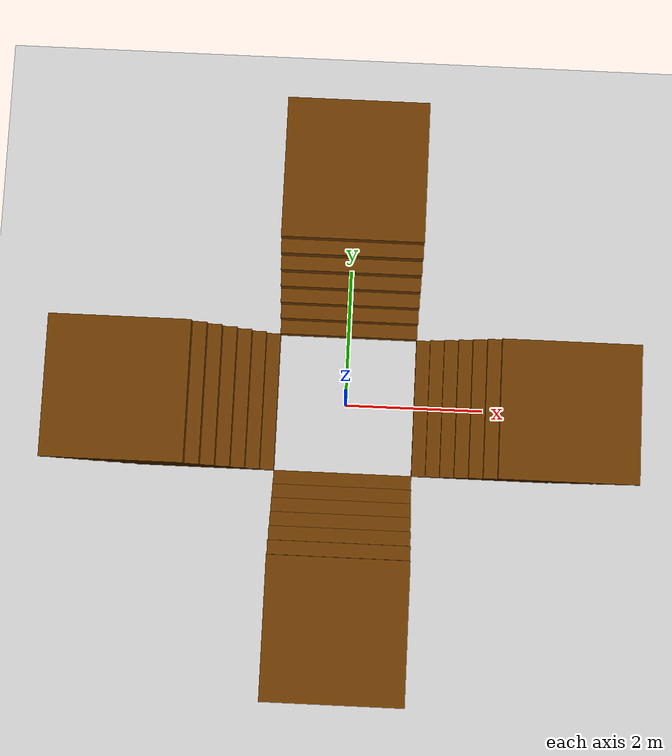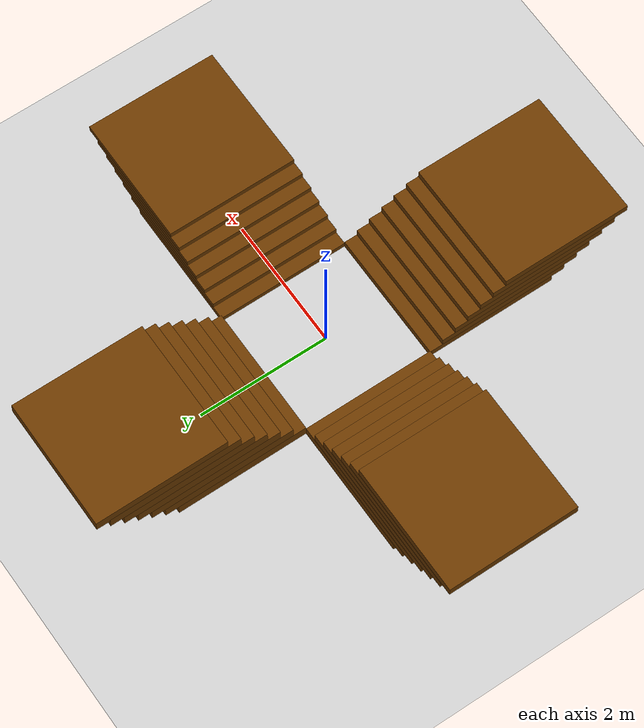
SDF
<?xml version="1.0" ?>
<sdf version="1.5">
    <world name="default">

        <physics type="ode">
        <max_step_size>0.00025</max_step_size>
        <real_time_factor>1.0</real_time_factor>
        <real_time_update_rate>1000</real_time_update_rate>
        <gravity>0 0 -9.81</gravity>
            <ode>
                <solver>
                <type>quick</type>
                <iters>80</iters>
                <sor>1.3</sor>
                </solver>
                <constraints>
                <cfm>0.0</cfm>
                <erp>0.2</erp>
                <contact_max_correcting_vel>0.1</contact_max_correcting_vel>
                <contact_surface_layer>0.0001</contact_surface_layer>
                </constraints>
            </ode>
        </physics>

        <scene>
        <sky>
            <clouds>
                <speed>12</speed>
            </clouds>
        </sky>
        </scene>
        <!-- A global light source -->
        <include>
            <uri>model://sun</uri>
        </include>
        <!-- A ground plane -->
        <include>
            <uri>model://ground_plane</uri>
        </include>
        <!-- environment blocks, obstacles or stairs -->
        <model name="static_environment">
        <static>true</static>

            <!-- stairs 1 -->
            <link name="floor">
                <pose>2 0 0.045 0 0 0</pose>
                <collision name="floor_collision">
                    <geometry>
                        <box>
                            <size>2 2 0.09</size>
                        </box>
                    </geometry>
                </collision>
                <visual name="floor_visual">
                    <geometry>
                        <box>
                            <size>2 2 0.09</size>
                        </box>
                    </geometry>
                    <material>
                        <ambient>0.2 0.2 0.2 1.0</ambient>
                        <diffuse>.421 0.225 0.0 1.0</diffuse>
                    </material>
                </visual>
            </link>

            <link name="floor1">
                <pose>2.2 0 0.135 0 0 0</pose>
                <collision name="floor1_collision">
                    <geometry>
                        <box>
                            <size>2 2 0.09</size>
                        </box>
                    </geometry>
                </collision>
                <visual name="floor1_visual">
                    <geometry>
                        <box>
                            <size>2 2 0.09</size>
                        </box>
                    </geometry>
                    <material>
                        <ambient>0.2 0.2 0.2 1.0</ambient>
                        <diffuse>.421 0.225 0.0 1.0</diffuse>
                    </material>
                </visual>
            </link>

            <link name="floor2">
                <pose>2.4 0 0.225 0 0 0</pose>
                <collision name="floor2_collision">
                    <geometry>
                        <box>
                            <size>2 2 0.09</size>
                        </box>
                    </geometry>
                </collision>
                <visual name="floor2_visual">
                    <geometry>
                        <box>
                            <size>2 2 0.09</size>
                        </box>
                    </geometry>
                    <material>
                        <ambient>0.2 0.2 0.2 1.0</ambient>
                        <diffuse>.421 0.225 0.0 1.0</diffuse>
                    </material>
                </visual>
            </link>

            <link name="floor3">
                <pose>2.6 0 0.315 0 0 0</pose>
                <collision name="floor3_collision">
                    <geometry>
                        <box>
                            <size>2 2 0.09</size>
                        </box>
                    </geometry>
                </collision>
                <visual name="floor3_visual">
                    <geometry>
                        <box>
                            <size>2 2 0.09</size>
                        </box>
                    </geometry>
                    <material>
                        <ambient>0.2 0.2 0.2 1.0</ambient>
                        <diffuse>.421 0.225 0.0 1.0</diffuse>
                    </material>
                </visual>
            </link>

            <link name="floor4">
                <pose>2.8 0 0.405 0 0 0</pose>
                <collision name="floor4_collision">
                    <geometry>
                        <box>
                            <size>2 2 0.09</size>
                        </box>
                    </geometry>
                </collision>
                <visual name="floor4_visual">
                    <geometry>
                        <box>
                            <size>2 2 0.09</size>
                        </box>
                    </geometry>
                    <material>
                        <ambient>0.2 0.2 0.2 1.0</ambient>
                        <diffuse>.421 0.225 0.0 1.0</diffuse>
                    </material>
                </visual>
            </link>

            <link name="floor5">
                <pose>3.0 0 0.495 0 0 0</pose>
                <collision name="floor5_collision">
                    <geometry>
                        <box>
                            <size>2 2 0.09</size>
                        </box>
                    </geometry>
                </collision>
                <visual name="floor5_visual">
                    <geometry>
                        <box>
                            <size>2 2 0.09</size>
                        </box>
                    </geometry>
                    <material>
                        <ambient>0.2 0.2 0.2 1.0</ambient>
                        <diffuse>.421 0.225 0.0 1.0</diffuse>
                    </material>
                </visual>
            </link>

            <link name="floor6">
                <pose>3.2 0 0.585 0 0 0</pose>
                <collision name="floor6_collision">
                    <geometry>
                        <box>
                            <size>2 2 0.09</size>
                        </box>
                    </geometry>
                </collision>
                <visual name="floor6_visual">
                    <geometry>
                        <box>
                            <size>2 2 0.09</size>
                        </box>
                    </geometry>
                    <material>
                        <ambient>0.2 0.2 0.2 1.0</ambient>
                        <diffuse>.421 0.225 0.0 1.0</diffuse>
                    </material>
                </visual>
            </link>

            <!-- stairs 2 -->
            <link name="floor7">
                <pose>0 -2 0.06 0 0 0</pose>
                <collision name="floor7_collision">
                    <geometry>
                        <box>
                            <size>2 2 0.12</size>
                        </box>
                    </geometry>
                </collision>
                <visual name="floor7_visual">
                    <geometry>
                        <box>
                            <size>2 2 0.12</size>
                        </box>
                    </geometry>
                    <material>
                        <ambient>0.2 0.2 0.2 1.0</ambient>
                        <diffuse>.421 0.225 0.0 1.0</diffuse>
                    </material>
                </visual>
            </link>

            <link name="floor8">
                <pose>0 -2.2 0.18 0 0 0</pose>
                <collision name="floor8_collision">
                    <geometry>
                        <box>
                            <size>2 2 0.12</size>
                        </box>
                    </geometry>
                </collision>
                <visual name="floor8_visual">
                    <geometry>
                        <box>
                            <size>2 2 0.12</size>
                        </box>
                    </geometry>
                    <material>
                        <ambient>0.2 0.2 0.2 1.0</ambient>
                        <diffuse>.421 0.225 0.0 1.0</diffuse>
                    </material>
                </visual>
            </link>

            <link name="floor9">
                <pose>0 -2.4 0.3 0 0 0</pose>
                <collision name="floor9_collision">
                    <geometry>
                        <box>
                            <size>2 2 0.12</size>
                        </box>
                    </geometry>
                </collision>
                <visual name="floor9_visual">
                    <geometry>
                        <box>
                            <size>2 2 0.12</size>
                        </box>
                    </geometry>
                    <material>
                        <ambient>0.2 0.2 0.2 1.0</ambient>
                        <diffuse>.421 0.225 0.0 1.0</diffuse>
                    </material>
                </visual>
            </link>

            <link name="floor10">
                <pose>0 -2.6 0.42 0 0 0</pose>
                <collision name="floor10_collision">
                    <geometry>
                        <box>
                            <size>2 2 0.12</size>
                        </box>
                    </geometry>
                </collision>
                <visual name="floor10_visual">
                    <geometry>
                        <box>
                            <size>2 2 0.12</size>
                        </box>
                    </geometry>
                    <material>
                        <ambient>0.2 0.2 0.2 1.0</ambient>
                        <diffuse>.421 0.225 0.0 1.0</diffuse>
                    </material>
                </visual>
            </link>

            <link name="floor11">
                <pose>0 -2.8 0.54 0 0 0</pose>
                <collision name="floor11_collision">
                    <geometry>
                        <box>
                            <size>2 2 0.12</size>
                        </box>
                    </geometry>
                </collision>
                <visual name="floor11_visual">
                    <geometry>
                        <box>
                            <size>2 2 0.12</size>
                        </box>
                    </geometry>
                    <material>
                        <ambient>0.2 0.2 0.2 1.0</ambient>
                        <diffuse>.421 0.225 0.0 1.0</diffuse>
                    </material>
                </visual>
            </link>

            <link name="floor12">
                <pose>0 -3.0 0.66 0 0 0</pose>
                <collision name="floor12_collision">
                    <geometry>
                        <box>
                            <size>2 2 0.12</size>
                        </box>
                    </geometry>
                </collision>
                <visual name="floor12_visual">
                    <geometry>
                        <box>
                            <size>2 2 0.12</size>
                        </box>
                    </geometry>
                    <material>
                        <ambient>0.2 0.2 0.2 1.0</ambient>
                        <diffuse>.421 0.225 0.0 1.0</diffuse>
                    </material>
                </visual>
            </link>

            <link name="floor13">
                <pose>0 -3.2 0.78 0 0 0</pose>
                <collision name="floor13_collision">
                    <geometry>
                        <box>
                            <size>2 2 0.12</size>
                        </box>
                    </geometry>
                </collision>
                <visual name="floor13_visual">
                    <geometry>
                        <box>
                            <size>2 2 0.12</size>
                        </box>
                    </geometry>
                    <material>
                        <ambient>0.2 0.2 0.2 1.0</ambient>
                        <diffuse>.421 0.225 0.0 1.0</diffuse>
                    </material>
                </visual>
            </link>

            <!-- stairs 3 -->
            <link name="floor14">
                <pose>-2 0 0.075 0 0 0</pose>
                <collision name="floor14_collision">
                    <geometry>
                        <box>
                            <size>2 2 0.15</size>
                        </box>
                    </geometry>
                </collision>
                <visual name="floor14_visual">
                    <geometry>
                        <box>
                            <size>2 2 0.15</size>
                        </box>
                    </geometry>
                    <material>
                        <ambient>0.2 0.2 0.2 1.0</ambient>
                        <diffuse>.421 0.225 0.0 1.0</diffuse>
                    </material>
                </visual>
            </link>

            <link name="floor15">
                <pose>-2.2 0 0.225 0 0 0</pose>
                <collision name="floor15_collision">
                    <geometry>
                        <box>
                            <size>2 2 0.15</size>
                        </box>
                    </geometry>
                </collision>
                <visual name="floor15_visual">
                    <geometry>
                        <box>
                            <size>2 2 0.15</size>
                        </box>
                    </geometry>
                    <material>
                        <ambient>0.2 0.2 0.2 1.0</ambient>
                        <diffuse>.421 0.225 0.0 1.0</diffuse>
                    </material>
                </visual>
            </link>

            <link name="floor16">
                <pose>-2.4 0 0.375 0 0 0</pose>
                <collision name="floor16_collision">
                    <geometry>
                        <box>
                            <size>2 2 0.15</size>
                        </box>
                    </geometry>
                </collision>
                <visual name="floor16_visual">
                    <geometry>
                        <box>
                            <size>2 2 0.15</size>
                        </box>
                    </geometry>
                    <material>
                        <ambient>0.2 0.2 0.2 1.0</ambient>
                        <diffuse>.421 0.225 0.0 1.0</diffuse>
                    </material>
                </visual>
            </link>

            <link name="floor17">
                <pose>-2.6 0 0.525 0 0 0</pose>
                <collision name="floor17_collision">
                    <geometry>
                        <box>
                            <size>2 2 0.15</size>
                        </box>
                    </geometry>
                </collision>
                <visual name="floor17_visual">
                    <geometry>
                        <box>
                            <size>2 2 0.15</size>
                        </box>
                    </geometry>
                    <material>
                        <ambient>0.2 0.2 0.2 1.0</ambient>
                        <diffuse>.421 0.225 0.0 1.0</diffuse>
                    </material>
                </visual>
            </link>

            <link name="floor18">
                <pose>-2.8 0 0.675 0 0 0</pose>
                <collision name="floor18_collision">
                    <geometry>
                        <box>
                            <size>2 2 0.15</size>
                        </box>
                    </geometry>
                </collision>
                <visual name="floor18_visual">
                    <geometry>
                        <box>
                            <size>2 2 0.15</size>
                        </box>
                    </geometry>
                    <material>
                        <ambient>0.2 0.2 0.2 1.0</ambient>
                        <diffuse>.421 0.225 0.0 1.0</diffuse>
                    </material>
                </visual>
            </link>

            <link name="floor19">
                <pose>-3 0 0.825 0 0 0</pose>
                <collision name="floor19_collision">
                    <geometry>
                        <box>
                            <size>2 2 0.15</size>
                        </box>
                    </geometry>
                </collision>
                <visual name="floor19_visual">
                    <geometry>
                        <box>
                            <size>2 2 0.15</size>
                        </box>
                    </geometry>
                    <material>
                        <ambient>0.2 0.2 0.2 1.0</ambient>
                        <diffuse>.421 0.225 0.0 1.0</diffuse>
                    </material>
                </visual>
            </link>

            <link name="floor20">
                <pose>-3.2 0 0.975 0 0 0</pose>
                <collision name="floor20_collision">
                    <geometry>
                        <box>
                            <size>2 2 0.15</size>
                        </box>
                    </geometry>
                </collision>
                <visual name="floor20_visual">
                    <geometry>
                        <box>
                            <size>2 2 0.15</size>
                        </box>
                    </geometry>
                    <material>
                        <ambient>0.2 0.2 0.2 1.0</ambient>
                        <diffuse>.421 0.225 0.0 1.0</diffuse>
                    </material>
                </visual>
            </link>

            <!-- stairs 4 -->
            <link name="floor21">
                <pose>0 2 0.09 0 0 0</pose>
                <collision name="floor21_collision">
                    <geometry>
                        <box>
                            <size>2 2 0.18</size>
                        </box>
                    </geometry>
                </collision>
                <visual name="floor21_visual">
                    <geometry>
                        <box>
                            <size>2 2 0.18</size>
                        </box>
                    </geometry>
                    <material>
                        <ambient>0.2 0.2 0.2 1.0</ambient>
                        <diffuse>.421 0.225 0.0 1.0</diffuse>
                    </material>
                </visual>
            </link>

            <link name="floor22">
                <pose>0 2.2 0.27 0 0 0</pose>
                <collision name="floor22_collision">
                    <geometry>
                        <box>
                            <size>2 2 0.18</size>
                        </box>
                    </geometry>
                </collision>
                <visual name="floor22_visual">
                    <geometry>
                        <box>
                            <size>2 2 0.18</size>
                        </box>
                    </geometry>
                    <material>
                        <ambient>0.2 0.2 0.2 1.0</ambient>
                        <diffuse>.421 0.225 0.0 1.0</diffuse>
                    </material>
                </visual>
            </link>

            <link name="floor23">
                <pose>0 2.4 0.45 0 0 0</pose>
                <collision name="floor23_collision">
                    <geometry>
                        <box>
                            <size>2 2 0.18</size>
                        </box>
                    </geometry>
                </collision>
                <visual name="floor23_visual">
                    <geometry>
                        <box>
                            <size>2 2 0.18</size>
                        </box>
                    </geometry>
                    <material>
                        <ambient>0.2 0.2 0.2 1.0</ambient>
                        <diffuse>.421 0.225 0.0 1.0</diffuse>
                    </material>
                </visual>
            </link>

            <link name="floor24">
                <pose>0 2.6 0.63 0 0 0</pose>
                <collision name="floor24_collision">
                    <geometry>
                        <box>
                            <size>2 2 0.18</size>
                        </box>
                    </geometry>
                </collision>
                <visual name="floor24_visual">
                    <geometry>
                        <box>
                            <size>2 2 0.18</size>
                        </box>
                    </geometry>
                    <material>
                        <ambient>0.2 0.2 0.2 1.0</ambient>
                        <diffuse>.421 0.225 0.0 1.0</diffuse>
                    </material>
                </visual>
            </link>

            <link name="floor25">
                <pose>0 2.8 0.81 0 0 0</pose>
                <collision name="floor25_collision">
                    <geometry>
                        <box>
                            <size>2 2 0.18</size>
                        </box>
                    </geometry>
                </collision>
                <visual name="floor25_visual">
                    <geometry>
                        <box>
                            <size>2 2 0.18</size>
                        </box>
                    </geometry>
                    <material>
                        <ambient>0.2 0.2 0.2 1.0</ambient>
                        <diffuse>.421 0.225 0.0 1.0</diffuse>
                    </material>
                </visual>
            </link>

            <link name="floor26">
                <pose>0 3 0.99 0 0 0</pose>
                <collision name="floor26_collision">
                    <geometry>
                        <box>
                            <size>2 2 0.18</size>
                        </box>
                    </geometry>
                </collision>
                <visual name="floor26_visual">
                    <geometry>
                        <box>
                            <size>2 2 0.18</size>
                        </box>
                    </geometry>
                    <material>
                        <ambient>0.2 0.2 0.2 1.0</ambient>
                        <diffuse>.421 0.225 0.0 1.0</diffuse>
                    </material>
                </visual>
            </link>

            <link name="floor27">
                <pose>0 3.2 1.14 0 0 0</pose>
                <collision name="floor27_collision">
                    <geometry>
                        <box>
                            <size>2 2 0.18</size>
                        </box>
                    </geometry>
                </collision>
                <visual name="floor27_visual">
                    <geometry>
                        <box>
                            <size>2 2 0.18</size>
                        </box>
                    </geometry>
                    <material>
                        <ambient>0.2 0.2 0.2 1.0</ambient>
                        <diffuse>.421 0.225 0.0 1.0</diffuse>
                    </material>
                </visual>
            </link>

        </model>

    </world>
</sdf>
